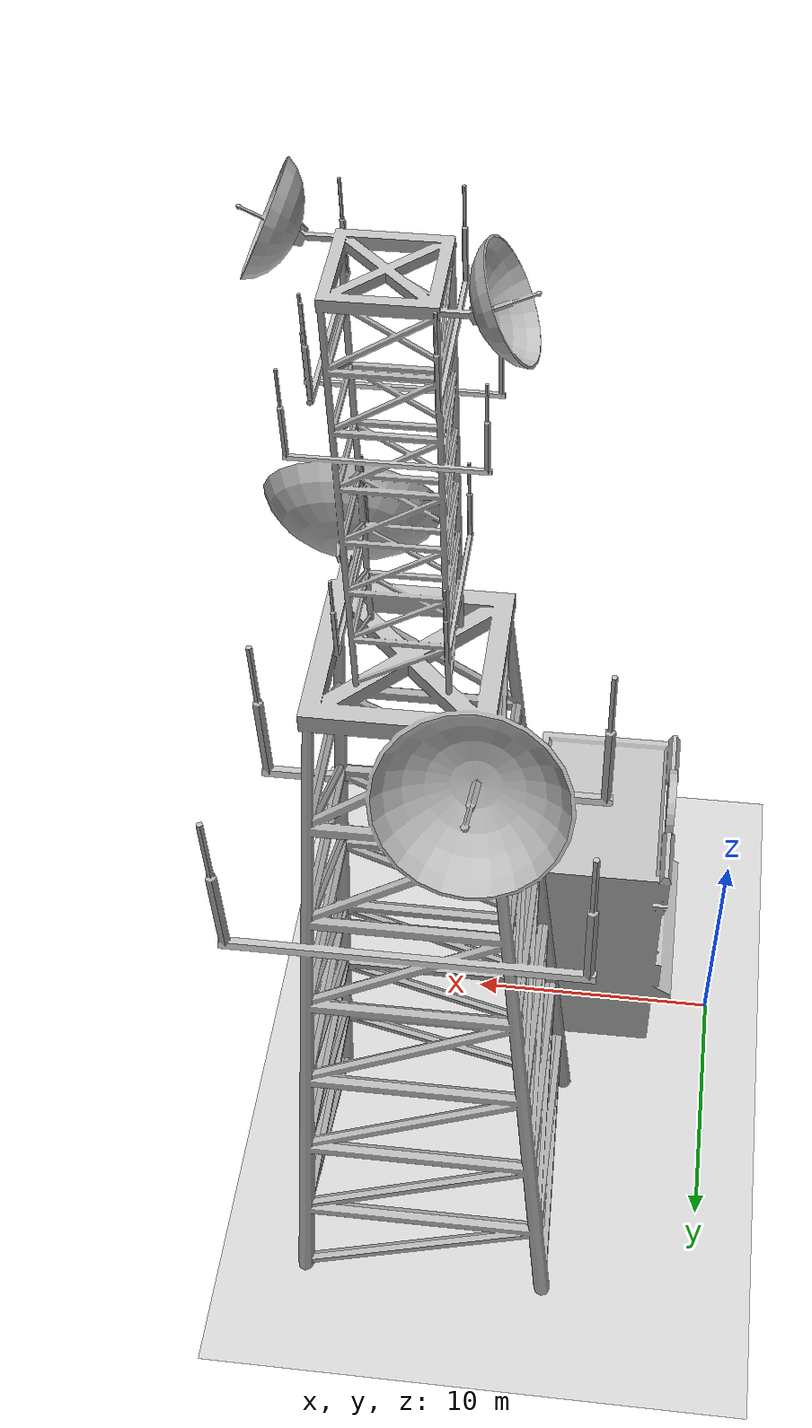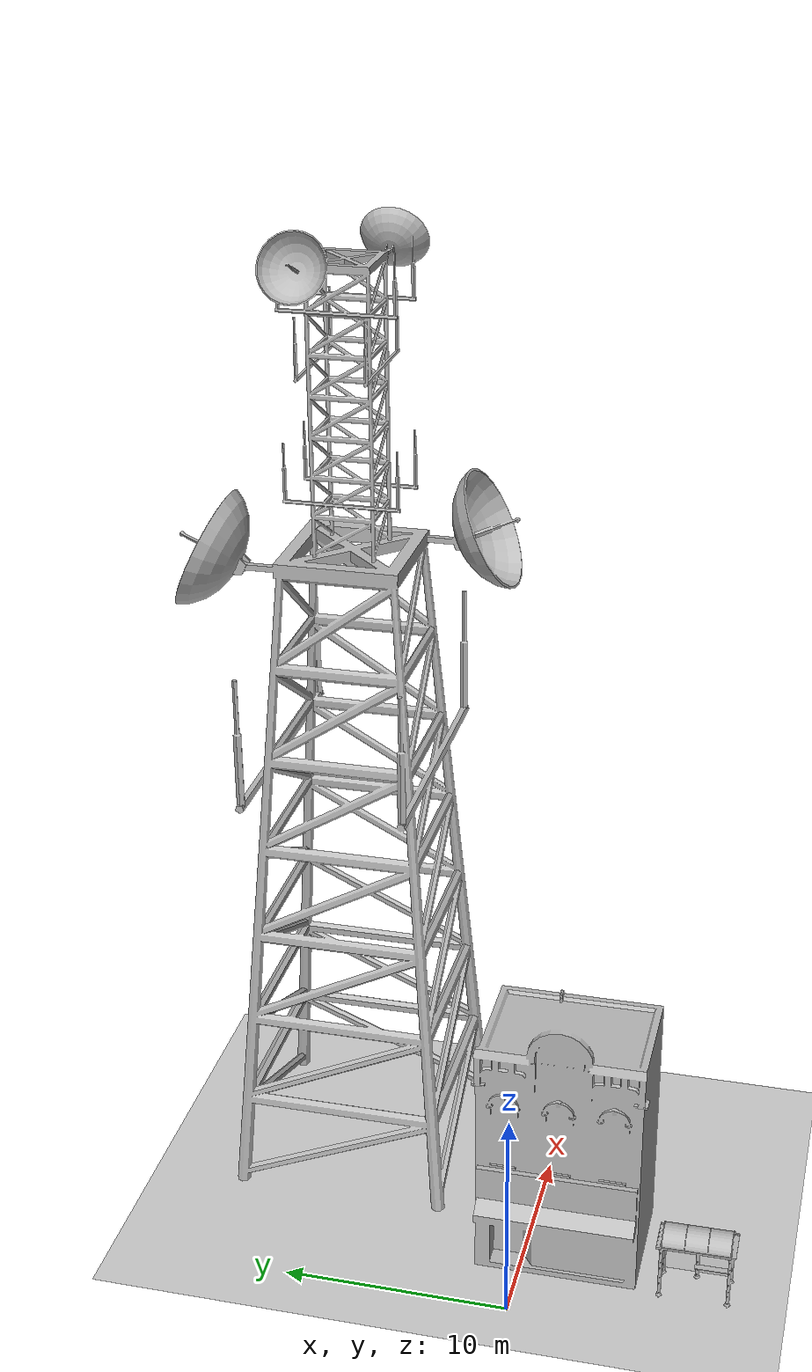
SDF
<sdf version="1.7">
 <world name="default">
  <light name="sun" type="directional">
   <pose>0 0 10 0 -0 0</pose>
   <diffuse>0.8 0.8 0.8 1</diffuse>
   <specular>0.2 0.2 0.2 1</specular>
   <attenuation>
    <range>1000</range>
    <constant>0.9</constant>
    <linear>0.01</linear>
    <quadratic>0.001</quadratic>
   </attenuation>
   <direction>-0.5 0.1 -0.9</direction>
   <spot><inner_angle>0</inner_angle><outer_angle>0</outer_angle><falloff>0</falloff></spot>
  </light>
  <model name="ground_plane">
   <static>1</static>
   <link name="link">
    <collision name="collision">
     <geometry><plane><normal>0 0 1</normal><size>100 100</size></plane></geometry>
     <surface><friction><ode><mu>100</mu><mu2>50</mu2></ode></friction></surface>
    </collision>
    <visual name="visual">
     <cast_shadows>0</cast_shadows>
     <geometry><plane><normal>0 0 1</normal><size>100 100</size></plane></geometry>
     <material>
      <script><uri>file://media/materials/scripts/gazebo.material</uri><name>Gazebo/Grey</name></script>
     </material>
    </visual>
   </link>
  </model>
  <gravity>0 0 -9.8</gravity>
  <magnetic_field>6e-06 2.3e-05 -4.2e-05</magnetic_field>
  <atmosphere type="adiabatic"/>
  <physics type="ode">
   <max_step_size>0.001</max_step_size>
   <real_time_factor>1</real_time_factor>
   <real_time_update_rate>1000</real_time_update_rate>
  </physics>
  <scene><ambient>0.4 0.4 0.4 1</ambient><background>0.7 0.7 0.7 1</background><shadows>1</shadows></scene>
  <audio><device>default</device></audio>
  <spherical_coordinates>
   <surface_model>EARTH_WGS84</surface_model>
   <latitude_deg>0</latitude_deg>
   <longitude_deg>0</longitude_deg>
   <elevation>0</elevation>
   <heading_deg>0</heading_deg>
  </spherical_coordinates>
  <model name="salon">
   <static>1</static>
   <link name="link">
    <collision name="collision">
     <pose>0 0 5.69469 0 -0 0</pose>
     <geometry><box><size>7.21297 5.37875 11.3894</size></box></geometry>
    </collision>
    <visual name="visual">
     <pose>0 -0.903605 0 0 -0 0</pose>
     <geometry><mesh><uri>model://salon/meshes/salon.dae</uri></mesh></geometry>
    </visual>
   </link>
   <pose>5.18751 -1.62041 0 0 0 -1.56655</pose>
  </model>
  <model name="solar_panel">
   <static>1</static>
   <link name="link">
    <visual name="visual">
     <geometry><mesh><uri>model://solar_panel/meshes/solar_panel.dae</uri></mesh></geometry>
    </visual>
    <collision name="collision">
     <geometry><mesh><uri>model://solar_panel/meshes/solar_panel.dae</uri></mesh></geometry>
    </collision>
   </link>
   <pose>7.47906 -0.75048 11.2648 0 0 -3.13755</pose>
  </model>
  <model name="radio_tower">
   <static>1</static>
   <link name="link">
    <collision name="collision">
     <geometry><mesh><uri>model://radio_tower/meshes/radio_tower.dae</uri></mesh></geometry>
    </collision>
    <visual name="visual">
     <geometry><mesh><uri>model://radio_tower/meshes/radio_tower.dae</uri></mesh></geometry>
    </visual>
   </link>
   <pose>10.5847 9.21814 0 0 -0 0</pose>
  </model>
  <model name="bus_stop">
   <link name="base_link">
    <inertial>
     <pose>-0.028945 0.578968 0.865497 0 -0 0</pose>
     <mass>599.322</mass>
     <inertia>
      <ixx>1541.97</ixx>
      <ixy>-12.6703</ixy>
      <ixz>1.60713</ixz>
      <iyy>1635.91</iyy>
      <iyz>370.745</iyz>
      <izz>1773.29</izz>
     </inertia>
    </inertial>
    <collision name="base_link_collision">
     <pose>0 0 0.12 0 -0 0</pose>
     <geometry><mesh><scale>1 1 1</scale><uri>model://bus_stop/meshes/base_link.dae</uri></mesh></geometry>
    </collision>
    <collision name="base_link_fixed_joint_lump__bench_collision_1">
     <pose>-0.68039 -0.585 0.76 -1.5708 -0 -3.14159</pose>
     <geometry><mesh><scale>1 1 1</scale><uri>model://bus_stop/meshes/bench.dae</uri></mesh></geometry>
    </collision>
    <collision name="base_link_fixed_joint_lump__board_collision_2">
     <pose>-1.5 -0.022169 2.9407 -1.5708 -0 -1.5708</pose>
     <geometry><box><size>0.82 0.266 0.01</size></box></geometry>
    </collision>
    <collision name="base_link_fixed_joint_lump__glass1_collision_3">
     <pose>1.49 -0.005 1.34 -3.14159 -0 1.5708</pose>
     <geometry><mesh><scale>1 1 1</scale><uri>model://bus_stop/meshes/glass.STL</uri></mesh></geometry>
    </collision>
    <collision name="base_link_fixed_joint_lump__glass2_collision_4">
     <pose>0.755 -0.76 1.34 3.14159 -0 -3.14159</pose>
     <geometry><mesh><scale>1 1 1</scale><uri>model://bus_stop/meshes/glass.STL</uri></mesh></geometry>
    </collision>
    <collision name="base_link_fixed_joint_lump__glass3_collision_5">
     <pose>-0.745 -0.74 1.34 -3.14159 0 0</pose>
     <geometry><mesh><scale>1 1 1</scale><uri>model://bus_stop/meshes/glass.STL</uri></mesh></geometry>
    </collision>
    <collision name="base_link_fixed_joint_lump__glass4_collision_6">
     <pose>-1.49 -0.005 1.34 -3.14159 -0 -1.5708</pose>
     <geometry><mesh><scale>1 1 1</scale><uri>model://bus_stop/meshes/glass.STL</uri></mesh></geometry>
    </collision>
    <collision name="base_link_fixed_joint_lump__head_collision_7">
     <pose>0 0 2.64 1.5708 -0 0</pose>
     <geometry><mesh><scale>1 1 1</scale><uri>model://bus_stop/meshes/head.dae</uri></mesh></geometry>
    </collision>
    <collision name="base_link_fixed_joint_lump__round1_collision_8">
     <pose>1.5 0 2.64 1.57079 7e-06 3.14159</pose>
     <geometry><mesh><scale>1 1 1</scale><uri>model://bus_stop/meshes/round.dae</uri></mesh></geometry>
    </collision>
    <collision name="base_link_fixed_joint_lump__round2_collision_9">
     <pose>0.5 0 2.64 1.57079 7e-06 3.14159</pose>
     <geometry><mesh><scale>1 1 1</scale><uri>model://bus_stop/meshes/round.dae</uri></mesh></geometry>
    </collision>
    <collision name="base_link_fixed_joint_lump__round3_collision_10">
     <pose>-0.5 0 2.64 1.57079 7e-06 3.14159</pose>
     <geometry><mesh><scale>1 1 1</scale><uri>model://bus_stop/meshes/round.dae</uri></mesh></geometry>
    </collision>
    <collision name="base_link_fixed_joint_lump__round4_collision_11">
     <pose>-1.5 0 2.64 1.57079 7e-06 3.14159</pose>
     <geometry><mesh><scale>1 1 1</scale><uri>model://bus_stop/meshes/round.dae</uri></mesh></geometry>
    </collision>
    <collision name="base_link_fixed_joint_lump__tag_collision_12">
     <pose>-1.73 0 2.69 -1.5708 -0 -1.5708</pose>
     <geometry><box><size>0.39 0.087 0.002</size></box></geometry>
    </collision>
    <visual name="base_link_visual">
     <pose>0 0 0.12 0 -0 0</pose>
     <geometry><mesh><scale>1 1 1</scale><uri>model://bus_stop/meshes/base_link.dae</uri></mesh></geometry>
    </visual>
    <visual name="base_link_fixed_joint_lump__bench_visual_1">
     <pose>-0.68039 -0.585 0.76 -1.5708 -0 -3.14159</pose>
     <cast_shadows>0</cast_shadows>
     <geometry><mesh><scale>1 1 1</scale><uri>model://bus_stop/meshes/bench.dae</uri></mesh></geometry>
    </visual>
    <visual name="base_link_fixed_joint_lump__board_visual_2">
     <cast_shadows>0</cast_shadows>
     <pose>-1.5 -0.022169 2.9407 -1.5708 -0 -1.5708</pose>
     <geometry><box><size>0.82 0.266 0.01</size></box></geometry>
     <material>
      <script>
       <uri>model://bus_stop/materials/scripts</uri>
       <uri>model://bus_stop/materials/textures</uri>
       <name>bus/station</name>
      </script>
     </material>
    </visual>
    <visual name="base_link_fixed_joint_lump__glass1_visual_3">
     <pose>1.49 -0.005 1.34 -3.14159 -0 1.5708</pose>
     <transparency>0.7</transparency>
     <geometry><mesh><scale>1 1 1</scale><uri>model://bus_stop/meshes/glass.STL</uri></mesh></geometry>
    </visual>
    <visual name="base_link_fixed_joint_lump__glass2_visual_4">
     <pose>0.755 -0.76 1.34 3.14159 -0 -3.14159</pose>
     <transparency>0.7</transparency>
     <geometry><mesh><scale>1 1 1</scale><uri>model://bus_stop/meshes/glass.STL</uri></mesh></geometry>
    </visual>
    <visual name="base_link_fixed_joint_lump__glass3_visual_5">
     <pose>-0.745 -0.74 1.34 -3.14159 0 0</pose>
     <transparency>0.7</transparency>
     <geometry><mesh><scale>1 1 1</scale><uri>model://bus_stop/meshes/glass.STL</uri></mesh></geometry>
    </visual>
    <visual name="base_link_fixed_joint_lump__glass4_visual_6">
     <pose>-1.49 -0.005 1.34 -3.14159 -0 -1.5708</pose>
     <transparency>0.7</transparency>
     <geometry><mesh><scale>1 1 1</scale><uri>model://bus_stop/meshes/glass.STL</uri></mesh></geometry>
    </visual>
    <visual name="base_link_fixed_joint_lump__head_visual_7">
     <pose>0 0 2.64 1.5708 -0 0</pose>
     <geometry><mesh><scale>1 1 1</scale><uri>model://bus_stop/meshes/head.dae</uri></mesh></geometry>
    </visual>
    <visual name="base_link_fixed_joint_lump__round1_visual_8">
     <pose>1.5 0 2.64 1.57079 7e-06 3.14159</pose>
     <geometry><mesh><scale>1 1 1</scale><uri>model://bus_stop/meshes/round.dae</uri></mesh></geometry>
    </visual>
    <visual name="base_link_fixed_joint_lump__round2_visual_9">
     <pose>0.5 0 2.64 1.57079 7e-06 3.14159</pose>
     <geometry><mesh><scale>1 1 1</scale><uri>model://bus_stop/meshes/round.dae</uri></mesh></geometry>
    </visual>
    <visual name="base_link_fixed_joint_lump__round3_visual_10">
     <pose>-0.5 0 2.64 1.57079 7e-06 3.14159</pose>
     <geometry><mesh><scale>1 1 1</scale><uri>model://bus_stop/meshes/round.dae</uri></mesh></geometry>
    </visual>
    <visual name="base_link_fixed_joint_lump__round4_visual_11">
     <pose>-1.5 0 2.64 1.57079 7e-06 3.14159</pose>
     <geometry><mesh><scale>1 1 1</scale><uri>model://bus_stop/meshes/round.dae</uri></mesh></geometry>
    </visual>
    <visual name="base_link_fixed_joint_lump__tag_visual_12">
     <pose>-1.73 0 2.69 -1.5708 -0 -1.5708</pose>
     <geometry><box><size>0.39 0.087 0.002</size></box></geometry>
     <material>
      <script>
       <uri>model://bus_stop/materials/scripts</uri>
       <uri>model://bus_stop/materials/textures</uri>
       <name>bus/tag</name>
      </script>
     </material>
    </visual>
   </link>
   <pose>3.15991 -7.79519 0.002439 0 -0 1.58039</pose>
  </model>
  <light name="user_point_light_0" type="point">
   <pose>6.7678 0.799527 1 0 -0 0</pose>
   <diffuse>0.5 0.5 0.5 1</diffuse>
   <specular>0.1 0.1 0.1 1</specular>
   <attenuation>
    <range>20</range>
    <constant>0.5</constant>
    <linear>0.01</linear>
    <quadratic>0.001</quadratic>
   </attenuation>
   <cast_shadows>0</cast_shadows>
   <direction>0 0 -1</direction>
  </light>
 </world>
</sdf>
